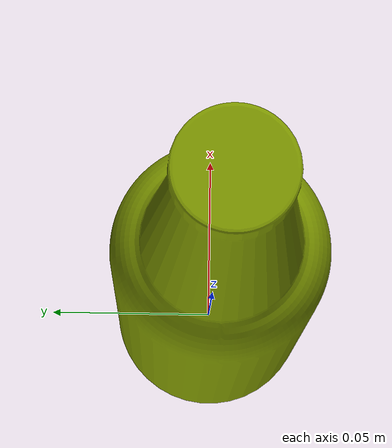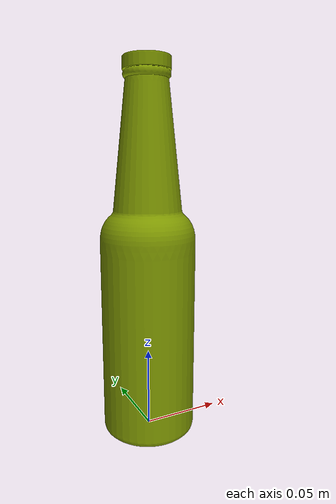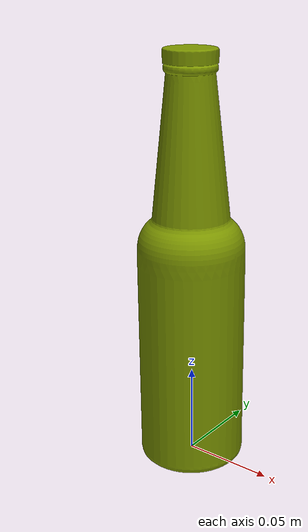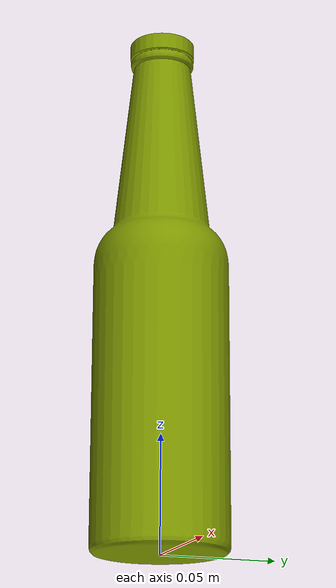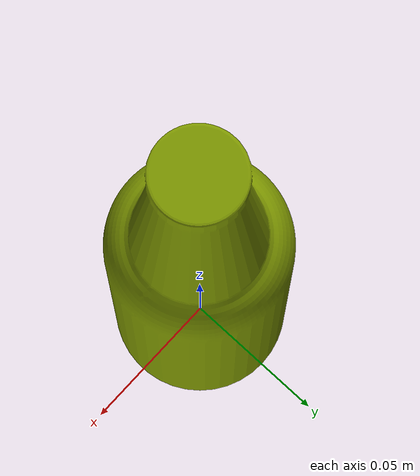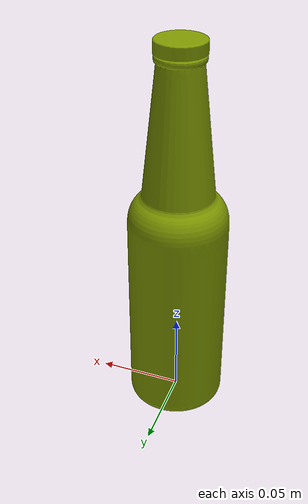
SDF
<?xml version="1.0" ?>
<sdf version="1.5">
  <model name="bevenbottle">
      <pose>0 0 0 0 0 0</pose>
      <link name="base_link">
       <inertial>
          <mass>0.3</mass>
        </inertial>
        <collision name="collision">
          <geometry>
            <mesh>
              <uri>model://sevenbottle/visual/sevenbottle.dae</uri>
              <scale>0.001 0.001 0.001</scale>
            </mesh>
          </geometry>
        </collision>
        <visual name="visual">
          <geometry>
            <mesh>
              <uri>model://sevenbottle/visual/sevenbottle.dae</uri>
              <scale>0.001 0.001 0.001</scale>
            </mesh>
          </geometry>
          <material>
            <ambient>0 0.2 0 1</ambient>
            <diffuse>0.5 0.6 0 1</diffuse>
            <emissive>0 0 0 0</emissive>
          </material>
        </visual>
    </link>

 </model>
</sdf>
